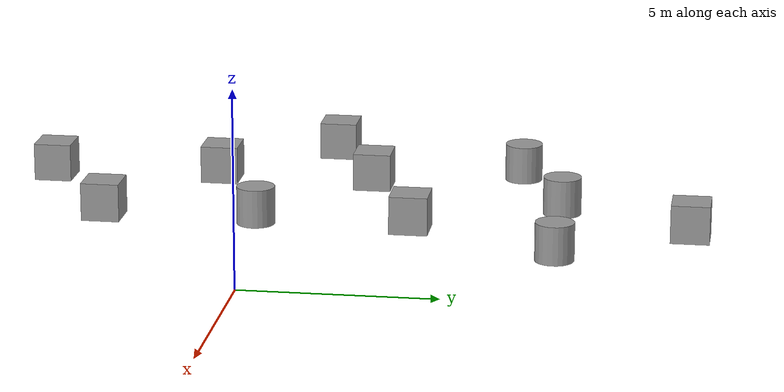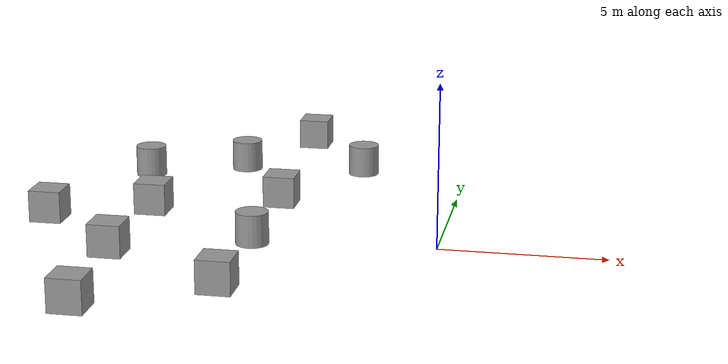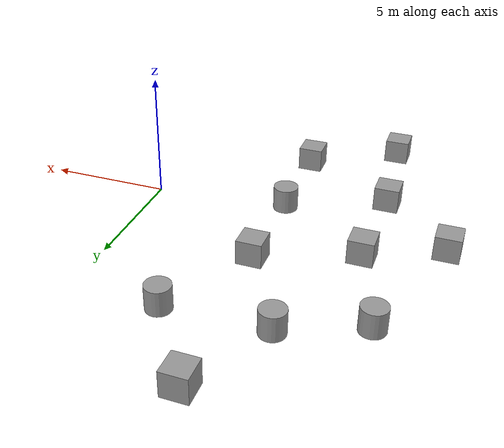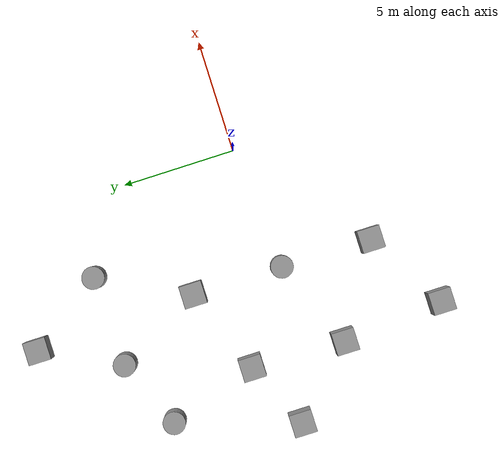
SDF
<sdf version="1.6">
 <world name="default">
  <physics name="default_physics" default="0" type="ode">
   <max_step_size>0.001</max_step_size>
   <real_time_factor>1</real_time_factor>
   <real_time_update_rate>1000</real_time_update_rate>
  </physics>
  <scene><ambient>0.4 0.4 0.4 1</ambient><background>0.7 0.7 0.7 1</background><shadows>1</shadows></scene>
  <light name="sun" type="directional">
   <pose>0 0 10 0 -0 0</pose>
   <diffuse>0.8 0.8 0.8 1</diffuse>
   <specular>0.1 0.1 0.1 1</specular>
   <attenuation>
    <range>1000</range>
    <constant>0.9</constant>
    <linear>0.01</linear>
    <quadratic>0.001</quadratic>
   </attenuation>
   <direction>-0.5 0.5 -1</direction>
  </light>
  <gravity>0 0 -9.8</gravity>
  <magnetic_field>6e-06 2.3e-05 -4.2e-05</magnetic_field>
  <atmosphere type="adiabatic"/>
  <spherical_coordinates>
   <surface_model>EARTH_WGS84</surface_model>
   <latitude_deg>0</latitude_deg>
   <longitude_deg>0</longitude_deg>
   <elevation>0</elevation>
   <heading_deg>0</heading_deg>
  </spherical_coordinates>
  <model name="unit_box_0">
   <pose>-5.46027 3.55416 0.499997 4e-06 -1e-06 0</pose>
   <link name="link">
    <inertial>
     <mass>1</mass>
     <inertia>
      <ixx>0.166667</ixx>
      <ixy>0</ixy>
      <ixz>0</ixz>
      <iyy>0.166667</iyy>
      <iyz>0</iyz>
      <izz>0.166667</izz>
     </inertia>
    </inertial>
    <collision name="collision"><geometry><box><size>1 1 1</size></box></geometry></collision>
    <visual name="visual">
     <geometry><box><size>1 1 1</size></box></geometry>
     <material>
      <script><name>Gazebo/Grey</name><uri>file://media/materials/scripts/gazebo.material</uri></script>
     </material>
    </visual>
   </link>
  </model>
  <model name="unit_cylinder_0">
   <pose>-5.47082 -0.484103 0.499993 4e-06 3e-06 -0</pose>
   <link name="link">
    <inertial>
     <mass>1</mass>
     <inertia><ixx>0.145833</ixx><ixy>0</ixy><ixz>0</ixz><iyy>0.145833</iyy><iyz>0</iyz><izz>0.125</izz></inertia>
    </inertial>
    <collision name="collision">
     <geometry><cylinder><radius>0.5</radius><length>1</length></cylinder></geometry>
    </collision>
    <visual name="visual">
     <geometry><cylinder><radius>0.5</radius><length>1</length></cylinder></geometry>
     <material>
      <script><name>Gazebo/Grey</name><uri>file://media/materials/scripts/gazebo.material</uri></script>
     </material>
    </visual>
   </link>
  </model>
  <model name="unit_cylinder_1">
   <pose>-3.45887 7.44562 0.5 3e-06 5e-06 1e-06</pose>
   <link name="link">
    <inertial>
     <mass>1</mass>
     <inertia><ixx>0.145833</ixx><ixy>0</ixy><ixz>0</ixz><iyy>0.145833</iyy><iyz>0</iyz><izz>0.125</izz></inertia>
    </inertial>
    <collision name="collision">
     <geometry><cylinder><radius>0.5</radius><length>1</length></cylinder></geometry>
    </collision>
    <visual name="visual">
     <geometry><cylinder><radius>0.5</radius><length>1</length></cylinder></geometry>
     <material>
      <script><name>Gazebo/Grey</name><uri>file://media/materials/scripts/gazebo.material</uri></script>
     </material>
    </visual>
   </link>
  </model>
  <model name="unit_box_1">
   <pose>-5.5001 -4.52069 0.499999 0 -0 0</pose>
   <link name="link">
    <inertial>
     <mass>1</mass>
     <inertia>
      <ixx>0.166667</ixx>
      <ixy>0</ixy>
      <ixz>0</ixz>
      <iyy>0.166667</iyy>
      <iyz>0</iyz>
      <izz>0.166667</izz>
     </inertia>
    </inertial>
    <collision name="collision"><geometry><box><size>1 1 1</size></box></geometry></collision>
    <visual name="visual">
     <geometry><box><size>1 1 1</size></box></geometry>
     <material>
      <script><name>Gazebo/Grey</name><uri>file://media/materials/scripts/gazebo.material</uri></script>
     </material>
    </visual>
   </link>
  </model>
  <model name="unit_cylinder_2">
   <pose>-7.47359 7.2967 0.499998 -2e-06 3e-06 -1e-06</pose>
   <link name="link">
    <inertial>
     <mass>1</mass>
     <inertia><ixx>0.145833</ixx><ixy>0</ixy><ixz>0</ixz><iyy>0.145833</iyy><iyz>0</iyz><izz>0.125</izz></inertia>
    </inertial>
    <collision name="collision">
     <geometry><cylinder><radius>0.5</radius><length>1</length></cylinder></geometry>
    </collision>
    <visual name="visual">
     <geometry><cylinder><radius>0.5</radius><length>1</length></cylinder></geometry>
     <material>
      <script><name>Gazebo/Grey</name><uri>file://media/materials/scripts/gazebo.material</uri></script>
     </material>
    </visual>
   </link>
  </model>
  <model name="unit_box_2">
   <pose>-9.26293 2.06569 0.5 0 -0 0</pose>
   <link name="link">
    <inertial>
     <mass>1</mass>
     <inertia>
      <ixx>0.166667</ixx>
      <ixy>0</ixy>
      <ixz>0</ixz>
      <iyy>0.166667</iyy>
      <iyz>0</iyz>
      <izz>0.166667</izz>
     </inertia>
    </inertial>
    <collision name="collision"><geometry><box><size>1 1 1</size></box></geometry></collision>
    <visual name="visual">
     <geometry><box><size>1 1 1</size></box></geometry>
     <material>
      <script><name>Gazebo/Grey</name><uri>file://media/materials/scripts/gazebo.material</uri></script>
     </material>
    </visual>
   </link>
  </model>
  <model name="unit_box_3">
   <pose>-9.38841 -2.1228 0.49999 0 -0 0</pose>
   <link name="link">
    <inertial>
     <mass>1</mass>
     <inertia>
      <ixx>0.166667</ixx>
      <ixy>0</ixy>
      <ixz>0</ixz>
      <iyy>0.166667</iyy>
      <iyz>0</iyz>
      <izz>0.166667</izz>
     </inertia>
    </inertial>
    <collision name="collision"><geometry><box><size>1 1 1</size></box></geometry></collision>
    <visual name="visual">
     <geometry><box><size>1 1 1</size></box></geometry>
     <material>
      <script><name>Gazebo/Grey</name><uri>file://media/materials/scripts/gazebo.material</uri></script>
     </material>
    </visual>
   </link>
  </model>
  <model name="unit_cylinder_3">
   <pose>-10.5035 5.99908 0.500001 0 4e-06 8e-06</pose>
   <link name="link">
    <inertial>
     <mass>1</mass>
     <inertia><ixx>0.145833</ixx><ixy>0</ixy><ixz>0</ixz><iyy>0.145833</iyy><iyz>0</iyz><izz>0.125</izz></inertia>
    </inertial>
    <collision name="collision">
     <geometry><cylinder><radius>0.5</radius><length>1</length></cylinder></geometry>
    </collision>
    <visual name="visual">
     <geometry><cylinder><radius>0.5</radius><length>1</length></cylinder></geometry>
     <material>
      <script><name>Gazebo/Grey</name><uri>file://media/materials/scripts/gazebo.material</uri></script>
     </material>
    </visual>
   </link>
  </model>
  <model name="unit_box_4">
   <pose>-5.74796 10.7294 0.5 0 0 -5e-06</pose>
   <link name="link">
    <inertial>
     <mass>1</mass>
     <inertia>
      <ixx>0.166667</ixx>
      <ixy>0</ixy>
      <ixz>0</ixz>
      <iyy>0.166667</iyy>
      <iyz>0</iyz>
      <izz>0.166667</izz>
     </inertia>
    </inertial>
    <collision name="collision"><geometry><box><size>1 1 1</size></box></geometry></collision>
    <visual name="visual">
     <geometry><box><size>1 1 1</size></box></geometry>
     <material>
      <script><name>Gazebo/Grey</name><uri>file://media/materials/scripts/gazebo.material</uri></script>
     </material>
    </visual>
   </link>
  </model>
  <model name="unit_box_5">
   <pose>-8.98484 -6.64116 0.49999 0 -0 0</pose>
   <link name="link">
    <inertial>
     <mass>1</mass>
     <inertia>
      <ixx>0.166667</ixx>
      <ixy>0</ixy>
      <ixz>0</ixz>
      <iyy>0.166667</iyy>
      <iyz>0</iyz>
      <izz>0.166667</izz>
     </inertia>
    </inertial>
    <collision name="collision"><geometry><box><size>1 1 1</size></box></geometry></collision>
    <visual name="visual">
     <geometry><box><size>1 1 1</size></box></geometry>
     <material>
      <script><name>Gazebo/Grey</name><uri>file://media/materials/scripts/gazebo.material</uri></script>
     </material>
    </visual>
   </link>
  </model>
  <model name="unit_box_6">
   <pose>-12.2099 0.699161 0.49999 0 -0 0</pose>
   <link name="link">
    <inertial>
     <mass>1</mass>
     <inertia>
      <ixx>0.166667</ixx>
      <ixy>0</ixy>
      <ixz>0</ixz>
      <iyy>0.166667</iyy>
      <iyz>0</iyz>
      <izz>0.166667</izz>
     </inertia>
    </inertial>
    <collision name="collision"><geometry><box><size>1 1 1</size></box></geometry></collision>
    <visual name="visual">
     <geometry><box><size>1 1 1</size></box></geometry>
     <material>
      <script><name>Gazebo/Grey</name><uri>file://media/materials/scripts/gazebo.material</uri></script>
     </material>
    </visual>
   </link>
  </model>
 </world>
</sdf>
